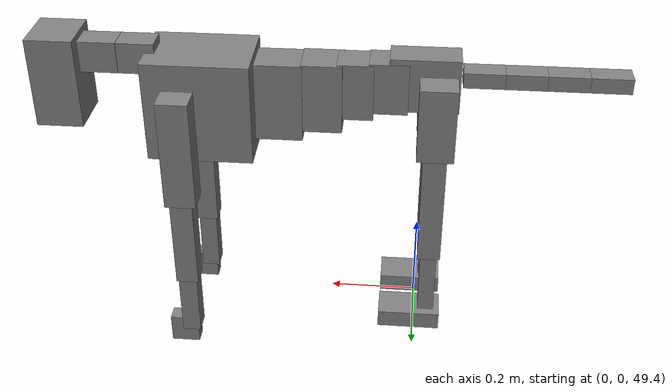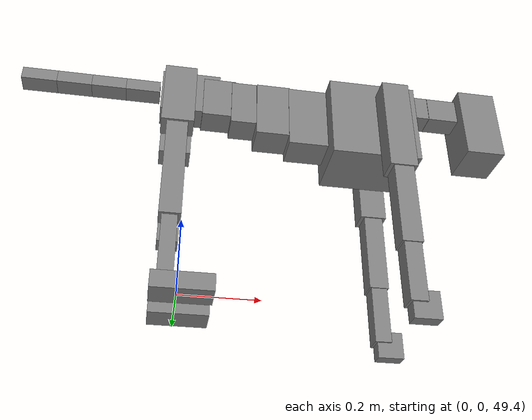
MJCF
<mujoco model="dog">

    <default>
        <joint armature="0.02" stiffness="1" damping="0.2" limited="true"/>
        <geom condim="3" friction="1 0.05 0.05" margin="0.01"/>
        <motor ctrllimited="true" ctrlrange="-1.0 1.0" forcelimited="true" gear="50"/>
    </default>

    <compiler inertiafromgeom="true" angle="radian"/>

    <option timestep="0.016" iterations="50" tolerance="1e-10" solver="Newton" jacobian="dense" cone="pyramidal"/>

    <size nconmax="20000" njmax="60000" nstack="5000000"/>
    <visual>
        <map force="0.1" zfar="30"/>
        <rgba haze="0.15 0.25 0.35 1"/>
        <quality shadowsize="2048"/>
        <global offwidth="800" offheight="800"/>
    </visual>

    <asset>
        <texture type="skybox" builtin="gradient" rgb1="0.3 0.5 0.7" rgb2="0 0 0" width="512" height="512"/>
        <texture name="texplane" type="2d" builtin="checker" rgb1=".2 .3 .4" rgb2=".1 0.15 0.2" width="512" height="512"
                 mark="cross" markrgb=".8 .8 .8"/>
        <texture name="texgeom" type="cube" builtin="flat" mark="cross" width="127" height="1278" rgb1="0.8 0.6 0.4"
                 rgb2="0.8 0.6 0.4" markrgb="1 1 1" random="0.01"/>

        <material name="matplane" reflectance="0.3" texture="texplane" texrepeat="1 1" texuniform="true"/>
        <material name="matgeom" texture="texgeom" texuniform="true" rgba="0.8 0.6 .4 1"/>
    </asset>

    <worldbody>
        <geom name="floor" pos="0 0 0" size="0 0 .25" type="plane" material="matplane" condim="3"/>

        <light directional="false" diffuse=".2 .2 .2" specular="0 0 0" pos="0 0 5" dir="0 0 -1" castshadow="false"/>
        <light mode="targetbodycom" target="torso" directional="false" diffuse=".8 .8 .8" specular="0.3 0.3 0.3"
               pos="0 0 4.0" dir="0 0 -1"/>

        <body name="root" pos="0 0 50">
            <freejoint name="root_1"/>
            <geom type="box" pos="0 0 -0.02" size="0.0774  0.0358  0.063" density="2030"/>

            <body name="spine1" pos="0.054 0 0">
                <joint name="spine1_y" axis="0 1 0" range="0 0.7" limited="true"/>
                <geom type="box" pos="0.02375 0 -0.03" size="0.04375  0.0375  0.05985" density="2030"/>

                <body name="spine2" pos="0.0612 0 0">
                    <joint name="spine2_y" axis="0 1 0" range="-0.15 0.15" limited="true"/>
                    <geom type="box" pos="0.03555  0  -0.04" size="0.04055  0.039  0.06615" density="2030"/>

                    <body name="spine3" pos="0.0730 0 0">
                        <joint name="spine3_y" axis="0 1 0" range="-0.15 0.15" limited="true"/>
                        <geom type="box" pos="0.03555  0  -0.057" size="0.04555  0.0445  0.081" density="2030"/>

                        <body name="spine4" pos="0.0780 0 0">
                            <joint name="spine4_y" axis="0 1 0" range="-0.15 0.15" limited="true"/>
                            <geom type="box" pos="0.05265  0  -0.07" size="0.05265  0.045  0.09135" density="2030"/>

                            <body name="torso" pos="0.1082 0 0">
                                <joint name="torso_y" axis="0 1 0" range="-0.15 0.15" limited="true"/>
                                <geom type="box" pos="0.11925  0  -0.085" size="0.11925  0.085  0.11745"
                                      density="2030"/>

                                <body name="neck1" pos="0.2160  0   0.0180">
                                    <joint name="neck1_y" axis="0 1 0" range="-1.2  -1" limited="true"/>
                                    <geom type="box" pos="0.0423  0  0" size="0.0423  0.03  0.036" density="2325"/>

                                    <body name="neck2" pos="0.0853  0  0">
                                        <joint name="neck2_y" axis="0 1 0" range="0.1  0" limited="true"/>
                                        <geom type="box" pos="0.0423  0  0" size="0.0423  0.03  0.036" density="2325"/>

                                        <body name="head" pos="0.0853  0  0">
                                            <joint name="head_y" axis="0 1 0" range="-0.3  -0.2" limited="true"/>
                                            <geom type="box" pos="0.0531  0  -0.055" size="0.0531  0.06  0.1044"
                                                  density="4030"/>

                                        </body>
                                    </body>
                                </body>

                                <body name="front_shoulder" pos="0.156  0   -0.0480">
                                    <joint name="front_shoulder_y" axis="0 1 0" range="-1 1.5" limited="true"/>
                                    <geom type="box" pos="0 0.13 -0.1034" size="0.0354  0.0302  0.1300" density="1158"/>
                                    <geom type="box" pos="0 -0.13 -0.1034" size="0.0354  0.0302  0.1300"
                                          density="1158"/>

                                    <body name="front_elbow" pos="0  0  -0.2067">
                                        <joint name="front_elbow_y" axis="0 1 0" range="-2 0" limited="true"/>
                                        <geom type="box" pos="0 0.13 -0.1194" size="0.0256  0.0262  0.1194"
                                              density="1081"/>
                                        <geom type="box" pos="0 -0.13 -0.1194" size="0.0256  0.0262  0.1194"
                                              density="1081"/>

                                        <body name="front_wrist" pos="0  0  -0.2388">
                                            <joint name="front_wrist_y" axis="0 1 0" range="-0.2 0" limited="true"/>
                                            <geom type="box" pos="0 0.13 -0.0672" size="0.0213  0.0236  0.0804"
                                                  density="1664"/>
                                            <geom type="box" pos="0 -0.13 -0.0672" size="0.0213  0.0236  0.0804"
                                                  density="1664"/>

                                            <body name="front_finger_end" pos="0  0  -0.1344">
                                                <joint name="front_finger_y" axis="0 1 0" range="-0.4 1"
                                                       limited="true"/>
                                                <geom type="box" pos="0.0181  0.13  -0.0190"
                                                      size="0.0332  0.0181  0.0340" density="1515"/>
                                                <geom type="box" pos="0.0181  -0.13  -0.0190"
                                                      size="0.0332  0.0181  0.0340" density="1515"/>

                                            </body>

                                        </body>
                                    </body>
                                </body>

                            </body>
                        </body>
                    </body>
                </body>
            </body>

            <body name="back_hip" pos="-0.03 0 -0.018">
                <joint name="back_hip_y" axis="0 1 0" range="-1.5 0.3" limited="true"/>
                <geom type="box" pos="0 0.07 -0.0645" size="0.0413  0.0324  0.0873" density="1154"/>
                <geom type="box" pos="0 -0.07 -0.0645" size="0.0413  0.0324  0.0873" density="1154"/>

                <body name="back_knee" pos="0  0  -0.1290">
                    <joint name="back_knee_y" axis="0 1 0" range="0 2.8" limited="true"/>
                    <geom type="box" pos="0 0.07 -0.1374" size="0.0266  0.0262  0.1529" density="1227"/>
                    <geom type="box" pos="0 -0.07 -0.1374" size="0.0266  0.0262  0.1529" density="1227"/>

                    <body name="back_ankle" pos="0  0  -0.2748">
                        <joint name="back_ankle_y" axis="0 1 0" range="-2.2 0" limited="true"/>
                        <geom type="box" pos="0 0.07 -0.0921" size="0.0190  0.0190  0.1034" density="1284"/>
                        <geom type="box" pos="0 -0.07 -0.0921" size="0.0190  0.0190  0.1034" density="1284"/>

                        <body name="back_toe_end" pos="0  0  -0.1842">
                            <joint name="back_toe_y" axis="0 1 0" range="-0.4 1" limited="true"/>
                            <geom type="box" pos="0.0396  0.07  -0.0060" size="0.0725  0.0396  0.0210" density="1515"/>
                            <geom type="box" pos="0.0396  -0.07  -0.0060" size="0.0725  0.0396  0.0210" density="1515"/>

                        </body>
                    </body>
                </body>
            </body>

            <body name="tail1" pos="-0.074 0 -0.006">
                <joint name="tail1_y" axis="0 1 0" range="-0.2 0.2" limited="true"/>
                <geom type="box" pos="-0.0536  0  0" size="0.045  0.025  0.0175" density="1587"/>

                <body name="tail2" pos="-0.09 0 0">
                    <joint name="tail2_y" axis="0 1 0" range="-0.2 0.2" limited="true"/>
                    <geom type="box" pos="-0.0536  0  0" size="0.045  0.025  0.0175" density="1587"/>

                    <body name="tail3" pos="-0.09 0 0">
                        <joint name="tail3_y" axis="0 1 0" range="-0.2 0.2" limited="true"/>
                        <geom type="box" pos="-0.0536  0  0" size="0.045  0.025  0.0175" density="1587"/>

                        <body name="tail4" pos="-0.09 0 0">
                            <joint name="tail4_y" axis="0 1 0" range="-0.2 0.2" limited="true"/>
                            <geom type="box" pos="-0.0536  0  0" size="0.045  0.025  0.0175" density="1587"/>

                        </body>
                    </body>
                </body>
            </body>
        </body>
    </worldbody>

    <actuator>
        <motor joint="spine1_y" forcerange="-150 150     "/>
        <motor joint="spine2_y" forcerange="-150 150     "/>
        <motor joint="spine3_y" forcerange="-150 150     "/>
        <motor joint="spine4_y" forcerange="-150 150     "/>
        <motor joint="torso_y" forcerange="-150 150     "/>
        <motor joint="neck1_y" forcerange="-100 100       "/>
        <motor joint="neck2_y" forcerange="-100 100       "/>
        <motor joint="head_y" forcerange="-150 150       "/>
        <motor joint="front_shoulder_y" forcerange="-180.97 120.60"/>
        <motor joint="front_elbow_y" forcerange="-151.98 138.48"/>
        <motor joint="front_wrist_y" forcerange="-86.25 102.66"/>
        <motor joint="front_finger_y" forcerange="-32.14 24.51"/>
        <motor joint="back_hip_y" forcerange="-315.33 316.75"/>
        <motor joint="back_knee_y" forcerange="-352.21 229.58"/>
        <motor joint="back_angle_y" forcerange="-121.94 82.63"/>
        <motor joint="back_toe_y" forcerange="-124.57 111.98"/>
        <motor joint="tail1_y" forcerange="-50 50     "/>
        <motor joint="tail2_y" forcerange="-50 50     "/>
        <motor joint="tail3_y" forcerange="-50 50     "/>
        <motor joint="tail4_y" forcerange="-50 50     "/>
    </actuator>
</mujoco>
